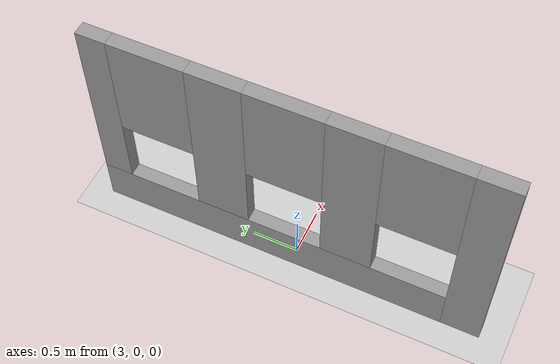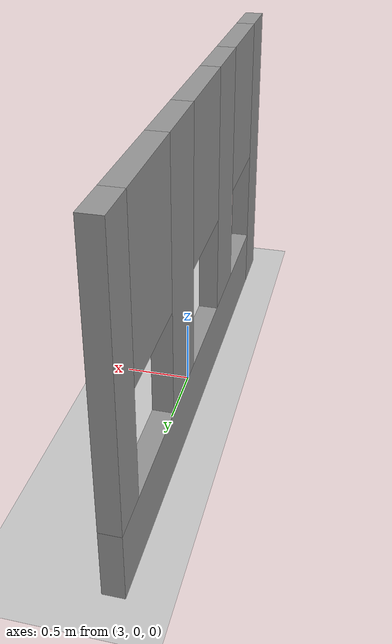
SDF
<sdf version="1.7">
 <world name="default">
  <light name="sun" type="directional">
   <pose>0 0 10 0 -0 0</pose>
   <diffuse>0.8 0.8 0.8 1</diffuse>
   <specular>0.2 0.2 0.2 1</specular>
   <attenuation>
    <range>1000</range>
    <constant>0.9</constant>
    <linear>0.01</linear>
    <quadratic>0.001</quadratic>
   </attenuation>
   <direction>-0.5 0.1 -0.9</direction>
   <spot><inner_angle>0</inner_angle><outer_angle>0</outer_angle><falloff>0</falloff></spot>
  </light>
  <model name="ground_plane">
   <static>1</static>
   <link name="link">
    <collision name="collision">
     <geometry><plane><normal>0 0 1</normal><size>100 100</size></plane></geometry>
     <surface>
      <contact><collide_bitmask>65535</collide_bitmask></contact>
      <friction><ode><mu>100</mu><mu2>50</mu2></ode></friction>
     </surface>
    </collision>
    <visual name="visual">
     <cast_shadows>0</cast_shadows>
     <geometry><plane><normal>0 0 1</normal><size>100 100</size></plane></geometry>
     <material>
      <script><uri>file://media/materials/scripts/gazebo.material</uri><name>Gazebo/Grey</name></script>
     </material>
    </visual>
   </link>
  </model>
  <gravity>0 0 -9.8</gravity>
  <magnetic_field>6e-06 2.3e-05 -4.2e-05</magnetic_field>
  <atmosphere type="adiabatic"/>
  <physics type="ode">
   <max_step_size>0.001</max_step_size>
   <real_time_factor>1</real_time_factor>
   <real_time_update_rate>1000</real_time_update_rate>
  </physics>
  <scene><ambient>0.4 0.4 0.4 1</ambient><background>0.7 0.7 0.7 1</background><shadows>1</shadows></scene>
  <spherical_coordinates>
   <surface_model>EARTH_WGS84</surface_model>
   <latitude_deg>0</latitude_deg>
   <longitude_deg>0</longitude_deg>
   <elevation>0</elevation>
   <heading_deg>0</heading_deg>
  </spherical_coordinates>
  <model name="Untitled1">
   <pose>1.4925 0.04 0 0 -0 0</pose>
   <link name="Wall_0">
    <pose>1.4175 0 0 0 -0 1.5708</pose>
    <visual name="Wall_0_Visual_0">
     <pose>-1.9175 0 1.25 0 -0 0</pose>
     <geometry><box><size>0.415 0.15 2.5</size></box></geometry>
     <material>
      <script><uri>file://media/materials/scripts/gazebo.material</uri><name>Gazebo/Grey</name></script>
      <ambient>1 1 1 1</ambient>
     </material>
     <meta><layer>0</layer></meta>
    </visual>
    <collision name="Wall_0_Collision_0">
     <geometry><box><size>0.415 0.15 2.5</size></box></geometry>
     <pose>-1.9175 0 1.25 0 -0 0</pose>
    </collision>
    <visual name="Wall_0_Visual_1">
     <pose>0.2075 0 0.25 0 -0 0</pose>
     <geometry><box><size>3.835 0.15 0.5</size></box></geometry>
     <material>
      <script><uri>file://media/materials/scripts/gazebo.material</uri><name>Gazebo/Grey</name></script>
      <ambient>1 1 1 1</ambient>
     </material>
     <meta><layer>0</layer></meta>
    </visual>
    <collision name="Wall_0_Collision_1">
     <geometry><box><size>3.835 0.15 0.5</size></box></geometry>
     <pose>0.2075 0 0.25 0 -0 0</pose>
    </collision>
    <visual name="Wall_0_Visual_2">
     <pose>-0.635 0 1.5 0 -0 0</pose>
     <geometry><box><size>0.55 0.15 2</size></box></geometry>
     <material>
      <script><uri>file://media/materials/scripts/gazebo.material</uri><name>Gazebo/Grey</name></script>
      <ambient>1 1 1 1</ambient>
     </material>
     <meta><layer>0</layer></meta>
    </visual>
    <collision name="Wall_0_Collision_2">
     <geometry><box><size>0.55 0.15 2</size></box></geometry>
     <pose>-0.635 0 1.5 0 -0 0</pose>
    </collision>
    <visual name="Wall_0_Visual_3">
     <pose>0.725 0 1.5 0 -0 0</pose>
     <geometry><box><size>0.57 0.15 2</size></box></geometry>
     <material>
      <script><uri>file://media/materials/scripts/gazebo.material</uri><name>Gazebo/Grey</name></script>
      <ambient>1 1 1 1</ambient>
     </material>
     <meta><layer>0</layer></meta>
    </visual>
    <collision name="Wall_0_Collision_3">
     <geometry><box><size>0.57 0.15 2</size></box></geometry>
     <pose>0.725 0 1.5 0 -0 0</pose>
    </collision>
    <visual name="Wall_0_Visual_4">
     <pose>1.9675 0 1.5 0 -0 0</pose>
     <geometry><box><size>0.315 0.15 2</size></box></geometry>
     <material>
      <script><uri>file://media/materials/scripts/gazebo.material</uri><name>Gazebo/Grey</name></script>
      <ambient>1 1 1 1</ambient>
     </material>
     <meta><layer>0</layer></meta>
    </visual>
    <collision name="Wall_0_Collision_4">
     <geometry><box><size>0.315 0.15 2</size></box></geometry>
     <pose>1.9675 0 1.5 0 -0 0</pose>
    </collision>
    <visual name="Wall_0_Visual_5">
     <pose>-1.31 0 1.9 0 -0 0</pose>
     <geometry><box><size>0.8 0.15 1.2</size></box></geometry>
     <material>
      <script><uri>file://media/materials/scripts/gazebo.material</uri><name>Gazebo/Grey</name></script>
      <ambient>1 1 1 1</ambient>
     </material>
     <meta><layer>0</layer></meta>
    </visual>
    <collision name="Wall_0_Collision_5">
     <geometry><box><size>0.8 0.15 1.2</size></box></geometry>
     <pose>-1.31 0 1.9 0 -0 0</pose>
    </collision>
    <visual name="Wall_0_Visual_6">
     <pose>0.04 0 1.9 0 -0 0</pose>
     <geometry><box><size>0.8 0.15 1.2</size></box></geometry>
     <material>
      <script><uri>file://media/materials/scripts/gazebo.material</uri><name>Gazebo/Grey</name></script>
      <ambient>1 1 1 1</ambient>
     </material>
     <meta><layer>0</layer></meta>
    </visual>
    <collision name="Wall_0_Collision_6">
     <geometry><box><size>0.8 0.15 1.2</size></box></geometry>
     <pose>0.04 0 1.9 0 -0 0</pose>
    </collision>
    <visual name="Wall_0_Visual_7">
     <pose>1.41 0 1.9 0 -0 0</pose>
     <geometry><box><size>0.8 0.15 1.2</size></box></geometry>
     <material>
      <script><uri>file://media/materials/scripts/gazebo.material</uri><name>Gazebo/Grey</name></script>
      <ambient>1 1 1 1</ambient>
     </material>
     <meta><layer>0</layer></meta>
    </visual>
    <collision name="Wall_0_Collision_7">
     <geometry><box><size>0.8 0.15 1.2</size></box></geometry>
     <pose>1.41 0 1.9 0 -0 0</pose>
    </collision>
   </link>
   <static>1</static>
  </model>
 </world>
</sdf>
